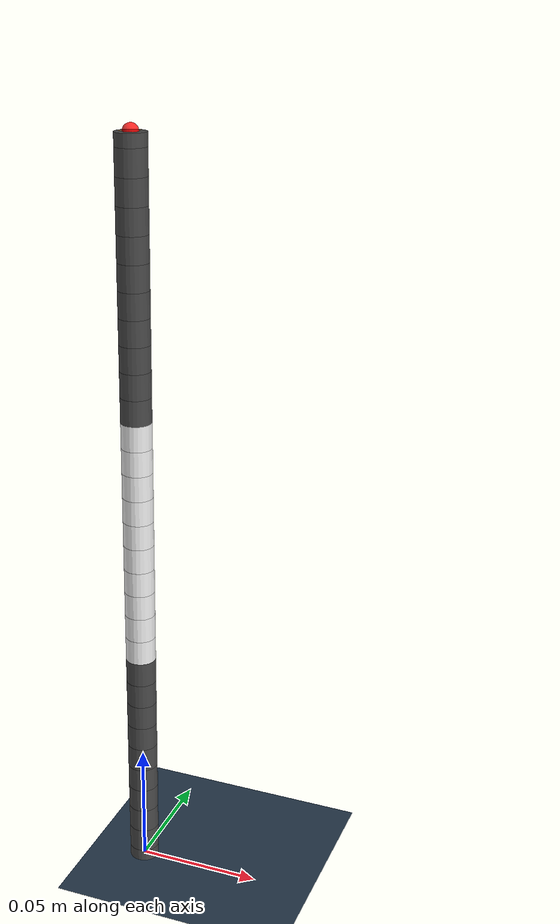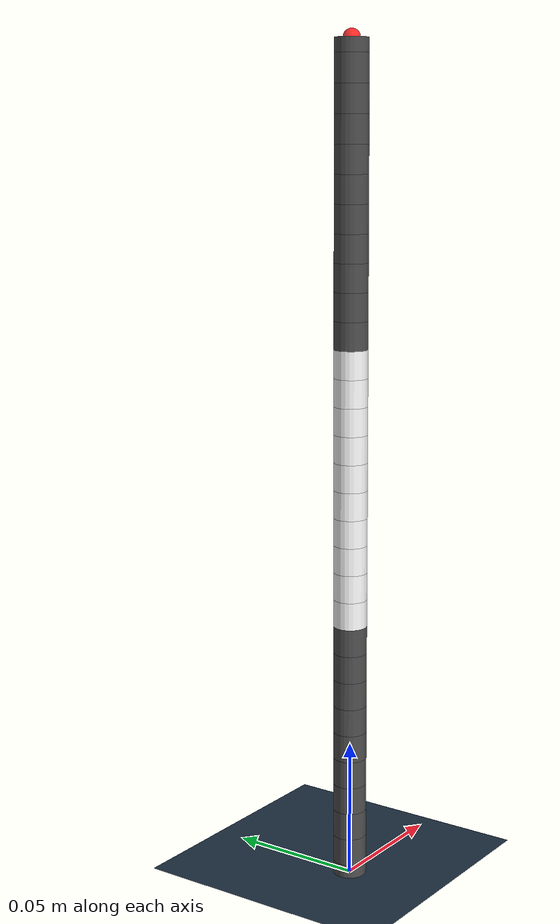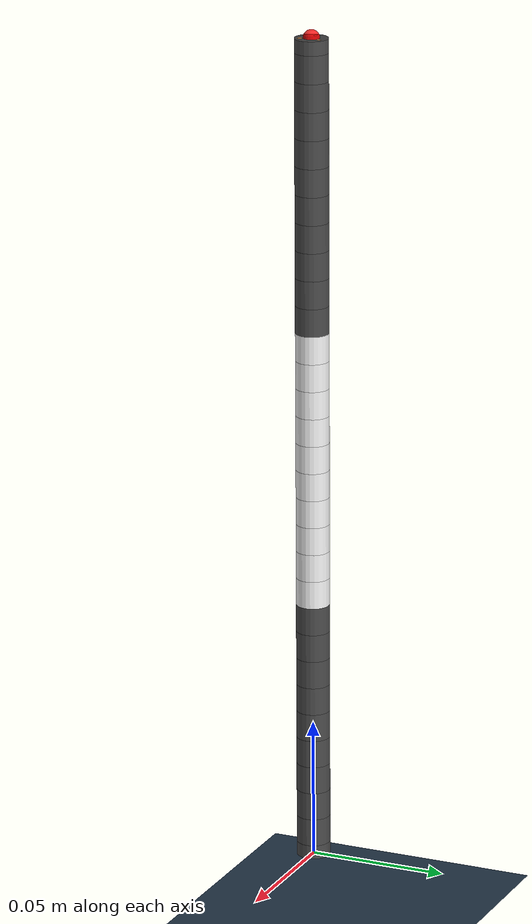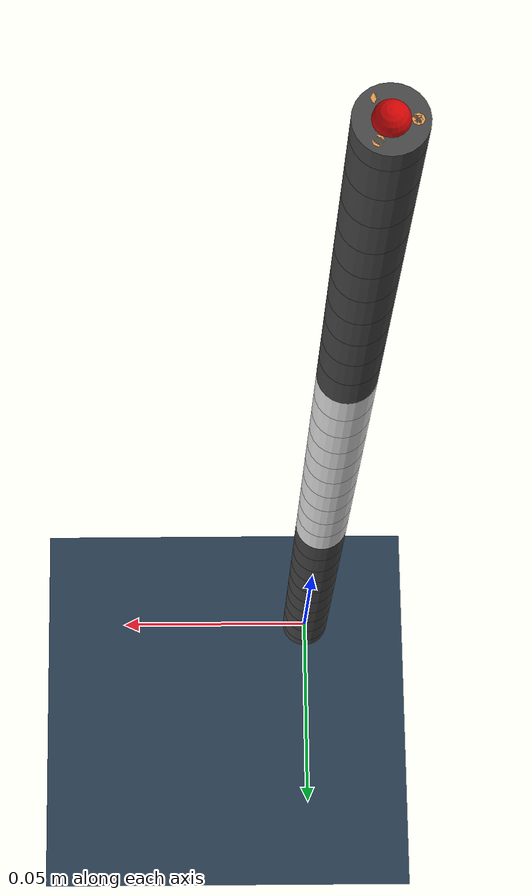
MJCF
<mujoco>
    <compiler angle="radian" autolimits="true" />
    <option gravity="0 0 -9.81" noslip_iterations="1" />
    <asset>
        <texture type="skybox" builtin="gradient" rgb1="1 1 1" rgb2=".6 .8 1" width="256" height="256" />
        <texture name="texplane" type="2d" builtin="checker" rgb1=".2 .3 .4" rgb2=".1 .15 .2" width="512" height="512" />
        <material name="matplane" texture="texplane" texrepeat="5 5" reflectance="0.5" texuniform="true" />
    </asset>
    <default>
        <geom contype="0" conaffinity="0" condim="1" friction="1.0 0.005 0.0001" />
        <default class="tdcr_collision">
            <geom contype="1" conaffinity="1" condim="3" friction="1.0 0.005 0.0001" solimp="0.8 0.95 0.001" />
        </default>
        <default class="planar_link">
            <joint stiffness="0.2454369260617026" damping="0.05" limited="false" axis="1 0 0" pos="0 0 0" type="hinge" />
        </default>
        <default class="vertical_link">
            <joint stiffness="0.2454369260617026" damping="0.05" limited="false" axis="0 -1 0" pos="0 0 0" type="hinge" />
        </default>
    </default>
    <worldbody>
        <light pos="0 0 10" dir="0 0 -1" />
        <geom type="plane" size="100 100 0.1" pos="0 0 -0.0072" material="matplane" />
        <body name="mocap_base" pos="0 0 0" mocap="true" euler="0 0 0">
            <body name="link_0" pos="0 0 0">
                <geom fromto="0 0 0 0 0 0.005000000000000001" size="0.006" type="cylinder" rgba="0.274 0.274 0.274 1.000" mass="0.0001480789697269549" name="geom_0" class="tdcr_collision" />
                <site name="l_0_base_seg_0_tendon_0" pos="0.004 0.0 0" rgba="0 0 0 0" />
                <site name="l_0_base_seg_0_tendon_1" pos="-0.001999999999999999 0.0034641016151377548 0" rgba="0 0 0 0" />
                <site name="l_0_base_seg_0_tendon_2" pos="-0.0020000000000000018 -0.0034641016151377535 0" rgba="0 0 0 0" />
                <site name="l_0_base_seg_1_tendon_0" pos="0.003464099166331756 0.0020000042414504114 0" rgba="0 0 0 0" />
                <site name="l_0_base_seg_1_tendon_1" pos="-0.00346410406393856 0.001999995758546591 0" rgba="0 0 0 0" />
                <site name="l_0_base_seg_1_tendon_2" pos="4.897606802930565e-09 -0.003999999999997002 0" rgba="0 0 0 0" />
                <site name="l_0_base_seg_2_tendon_0" pos="0.0019999915170901827 0.0034641065127341726 0" rgba="0 0 0 0" />
                <site name="l_0_base_seg_2_tendon_1" pos="-0.003999999999988007 -9.795213606833506e-09 0" rgba="0 0 0 0" />
                <site name="l_0_base_seg_2_tendon_2" pos="0.0020000084828978235 -0.0034640967175205645 0" rgba="0 0 0 0" />
                <body name="link_1" pos="0 0 0.005000000000000001">
                    <geom fromto="0 0 0 0 0 0.010000000000000002" size="0.006" type="cylinder" rgba="0.274 0.274 0.274 1.000" mass="0.0002961579394539098" name="geom_1" class="tdcr_collision" />
                    <joint class="planar_link" name="joint_1_x" />
                    <joint class="vertical_link" name="joint_1_z" />
                    <site name="l_1_seg_0_tendon_0" pos="0.004 0.0 0.005000000000000001" rgba="0 0 0 0" />
                    <site name="l_1_seg_0_tendon_1" pos="-0.001999999999999999 0.0034641016151377548 0.005000000000000001" rgba="0 0 0 0" />
                    <site name="l_1_seg_0_tendon_2" pos="-0.0020000000000000018 -0.0034641016151377535 0.005000000000000001" rgba="0 0 0 0" />
                    <site name="l_1_seg_1_tendon_0" pos="0.003464099166331756 0.0020000042414504114 0.005000000000000001" rgba="0 0 0 0" />
                    <site name="l_1_seg_1_tendon_1" pos="-0.00346410406393856 0.001999995758546591 0.005000000000000001" rgba="0 0 0 0" />
                    <site name="l_1_seg_1_tendon_2" pos="4.897606802930565e-09 -0.003999999999997002 0.005000000000000001" rgba="0 0 0 0" />
                    <site name="l_1_seg_2_tendon_0" pos="0.0019999915170901827 0.0034641065127341726 0.005000000000000001" rgba="0 0 0 0" />
                    <site name="l_1_seg_2_tendon_1" pos="-0.003999999999988007 -9.795213606833506e-09 0.005000000000000001" rgba="0 0 0 0" />
                    <site name="l_1_seg_2_tendon_2" pos="0.0020000084828978235 -0.0034640967175205645 0.005000000000000001" rgba="0 0 0 0" />
                    <body name="link_2" pos="0 0 0.010000000000000002">
                        <geom fromto="0 0 0 0 0 0.010000000000000002" size="0.006" type="cylinder" rgba="0.274 0.274 0.274 1.000" mass="0.0002961579394539098" name="geom_2" class="tdcr_collision" />
                        <joint class="planar_link" name="joint_2_x" />
                        <joint class="vertical_link" name="joint_2_z" />
                        <site name="l_2_seg_0_tendon_0" pos="0.004 0.0 0.005000000000000001" rgba="0 0 0 0" />
                        <site name="l_2_seg_0_tendon_1" pos="-0.001999999999999999 0.0034641016151377548 0.005000000000000001" rgba="0 0 0 0" />
                        <site name="l_2_seg_0_tendon_2" pos="-0.0020000000000000018 -0.0034641016151377535 0.005000000000000001" rgba="0 0 0 0" />
                        <site name="l_2_seg_1_tendon_0" pos="0.003464099166331756 0.0020000042414504114 0.005000000000000001" rgba="0 0 0 0" />
                        <site name="l_2_seg_1_tendon_1" pos="-0.00346410406393856 0.001999995758546591 0.005000000000000001" rgba="0 0 0 0" />
                        <site name="l_2_seg_1_tendon_2" pos="4.897606802930565e-09 -0.003999999999997002 0.005000000000000001" rgba="0 0 0 0" />
                        <site name="l_2_seg_2_tendon_0" pos="0.0019999915170901827 0.0034641065127341726 0.005000000000000001" rgba="0 0 0 0" />
                        <site name="l_2_seg_2_tendon_1" pos="-0.003999999999988007 -9.795213606833506e-09 0.005000000000000001" rgba="0 0 0 0" />
                        <site name="l_2_seg_2_tendon_2" pos="0.0020000084828978235 -0.0034640967175205645 0.005000000000000001" rgba="0 0 0 0" />
                        <body name="link_3" pos="0 0 0.010000000000000002">
                            <geom fromto="0 0 0 0 0 0.010000000000000002" size="0.006" type="cylinder" rgba="0.274 0.274 0.274 1.000" mass="0.0002961579394539098" name="geom_3" class="tdcr_collision" />
                            <joint class="planar_link" name="joint_3_x" />
                            <joint class="vertical_link" name="joint_3_z" />
                            <site name="l_3_seg_0_tendon_0" pos="0.004 0.0 0.004999999999999994" rgba="0 0 0 0" />
                            <site name="l_3_seg_0_tendon_1" pos="-0.001999999999999999 0.0034641016151377548 0.004999999999999994" rgba="0 0 0 0" />
                            <site name="l_3_seg_0_tendon_2" pos="-0.0020000000000000018 -0.0034641016151377535 0.004999999999999994" rgba="0 0 0 0" />
                            <site name="l_3_seg_1_tendon_0" pos="0.003464099166331756 0.0020000042414504114 0.004999999999999994" rgba="0 0 0 0" />
                            <site name="l_3_seg_1_tendon_1" pos="-0.00346410406393856 0.001999995758546591 0.004999999999999994" rgba="0 0 0 0" />
                            <site name="l_3_seg_1_tendon_2" pos="4.897606802930565e-09 -0.003999999999997002 0.004999999999999994" rgba="0 0 0 0" />
                            <site name="l_3_seg_2_tendon_0" pos="0.0019999915170901827 0.0034641065127341726 0.004999999999999994" rgba="0 0 0 0" />
                            <site name="l_3_seg_2_tendon_1" pos="-0.003999999999988007 -9.795213606833506e-09 0.004999999999999994" rgba="0 0 0 0" />
                            <site name="l_3_seg_2_tendon_2" pos="0.0020000084828978235 -0.0034640967175205645 0.004999999999999994" rgba="0 0 0 0" />
                            <body name="link_4" pos="0 0 0.010000000000000002">
                                <geom fromto="0 0 0 0 0 0.010000000000000002" size="0.006" type="cylinder" rgba="0.274 0.274 0.274 1.000" mass="0.0002961579394539098" name="geom_4" class="tdcr_collision" />
                                <joint class="planar_link" name="joint_4_x" />
                                <joint class="vertical_link" name="joint_4_z" />
                                <site name="l_4_seg_0_tendon_0" pos="0.004 0.0 0.0050000000000000044" rgba="0 0 0 0" />
                                <site name="l_4_seg_0_tendon_1" pos="-0.001999999999999999 0.0034641016151377548 0.0050000000000000044" rgba="0 0 0 0" />
                                <site name="l_4_seg_0_tendon_2" pos="-0.0020000000000000018 -0.0034641016151377535 0.0050000000000000044" rgba="0 0 0 0" />
                                <site name="l_4_seg_1_tendon_0" pos="0.003464099166331756 0.0020000042414504114 0.0050000000000000044" rgba="0 0 0 0" />
                                <site name="l_4_seg_1_tendon_1" pos="-0.00346410406393856 0.001999995758546591 0.0050000000000000044" rgba="0 0 0 0" />
                                <site name="l_4_seg_1_tendon_2" pos="4.897606802930565e-09 -0.003999999999997002 0.0050000000000000044" rgba="0 0 0 0" />
                                <site name="l_4_seg_2_tendon_0" pos="0.0019999915170901827 0.0034641065127341726 0.0050000000000000044" rgba="0 0 0 0" />
                                <site name="l_4_seg_2_tendon_1" pos="-0.003999999999988007 -9.795213606833506e-09 0.0050000000000000044" rgba="0 0 0 0" />
                                <site name="l_4_seg_2_tendon_2" pos="0.0020000084828978235 -0.0034640967175205645 0.0050000000000000044" rgba="0 0 0 0" />
                                <body name="link_5" pos="0 0 0.010000000000000002">
                                    <geom fromto="0 0 0 0 0 0.010000000000000002" size="0.006" type="cylinder" rgba="0.274 0.274 0.274 1.000" mass="0.0002961579394539098" name="geom_5" class="tdcr_collision" />
                                    <joint class="planar_link" name="joint_5_x" />
                                    <joint class="vertical_link" name="joint_5_z" />
                                    <site name="l_5_seg_0_tendon_0" pos="0.004 0.0 0.0050000000000000044" rgba="0 0 0 0" />
                                    <site name="l_5_seg_0_tendon_1" pos="-0.001999999999999999 0.0034641016151377548 0.0050000000000000044" rgba="0 0 0 0" />
                                    <site name="l_5_seg_0_tendon_2" pos="-0.0020000000000000018 -0.0034641016151377535 0.0050000000000000044" rgba="0 0 0 0" />
                                    <site name="l_5_seg_1_tendon_0" pos="0.003464099166331756 0.0020000042414504114 0.0050000000000000044" rgba="0 0 0 0" />
                                    <site name="l_5_seg_1_tendon_1" pos="-0.00346410406393856 0.001999995758546591 0.0050000000000000044" rgba="0 0 0 0" />
                                    <site name="l_5_seg_1_tendon_2" pos="4.897606802930565e-09 -0.003999999999997002 0.0050000000000000044" rgba="0 0 0 0" />
                                    <site name="l_5_seg_2_tendon_0" pos="0.0019999915170901827 0.0034641065127341726 0.0050000000000000044" rgba="0 0 0 0" />
                                    <site name="l_5_seg_2_tendon_1" pos="-0.003999999999988007 -9.795213606833506e-09 0.0050000000000000044" rgba="0 0 0 0" />
                                    <site name="l_5_seg_2_tendon_2" pos="0.0020000084828978235 -0.0034640967175205645 0.0050000000000000044" rgba="0 0 0 0" />
                                    <body name="link_6" pos="0 0 0.010000000000000002">
                                        <geom fromto="0 0 0 0 0 0.010000000000000002" size="0.006" type="cylinder" rgba="0.274 0.274 0.274 1.000" mass="0.0002961579394539098" name="geom_6" class="tdcr_collision" />
                                        <joint class="planar_link" name="joint_6_x" />
                                        <joint class="vertical_link" name="joint_6_z" />
                                        <site name="l_6_seg_0_tendon_0" pos="0.004 0.0 0.0049999999999999906" rgba="0 0 0 0" />
                                        <site name="l_6_seg_0_tendon_1" pos="-0.001999999999999999 0.0034641016151377548 0.0049999999999999906" rgba="0 0 0 0" />
                                        <site name="l_6_seg_0_tendon_2" pos="-0.0020000000000000018 -0.0034641016151377535 0.0049999999999999906" rgba="0 0 0 0" />
                                        <site name="l_6_seg_1_tendon_0" pos="0.003464099166331756 0.0020000042414504114 0.0049999999999999906" rgba="0 0 0 0" />
                                        <site name="l_6_seg_1_tendon_1" pos="-0.00346410406393856 0.001999995758546591 0.0049999999999999906" rgba="0 0 0 0" />
                                        <site name="l_6_seg_1_tendon_2" pos="4.897606802930565e-09 -0.003999999999997002 0.0049999999999999906" rgba="0 0 0 0" />
                                        <site name="l_6_seg_2_tendon_0" pos="0.0019999915170901827 0.0034641065127341726 0.0049999999999999906" rgba="0 0 0 0" />
                                        <site name="l_6_seg_2_tendon_1" pos="-0.003999999999988007 -9.795213606833506e-09 0.0049999999999999906" rgba="0 0 0 0" />
                                        <site name="l_6_seg_2_tendon_2" pos="0.0020000084828978235 -0.0034640967175205645 0.0049999999999999906" rgba="0 0 0 0" />
                                        <body name="link_7" pos="0 0 0.010000000000000002">
                                            <geom fromto="0 0 0 0 0 0.010000000000000002" size="0.006" type="cylinder" rgba="0.274 0.274 0.274 1.000" mass="0.0002961579394539098" name="geom_7" class="tdcr_collision" />
                                            <joint class="planar_link" name="joint_7_x" />
                                            <joint class="vertical_link" name="joint_7_z" />
                                            <site name="l_7_seg_0_tendon_0" pos="0.004 0.0 0.0049999999999999906" rgba="0 0 0 0" />
                                            <site name="l_7_seg_0_tendon_1" pos="-0.001999999999999999 0.0034641016151377548 0.0049999999999999906" rgba="0 0 0 0" />
                                            <site name="l_7_seg_0_tendon_2" pos="-0.0020000000000000018 -0.0034641016151377535 0.0049999999999999906" rgba="0 0 0 0" />
                                            <site name="l_7_seg_1_tendon_0" pos="0.003464099166331756 0.0020000042414504114 0.0049999999999999906" rgba="0 0 0 0" />
                                            <site name="l_7_seg_1_tendon_1" pos="-0.00346410406393856 0.001999995758546591 0.0049999999999999906" rgba="0 0 0 0" />
                                            <site name="l_7_seg_1_tendon_2" pos="4.897606802930565e-09 -0.003999999999997002 0.0049999999999999906" rgba="0 0 0 0" />
                                            <site name="l_7_seg_2_tendon_0" pos="0.0019999915170901827 0.0034641065127341726 0.0049999999999999906" rgba="0 0 0 0" />
                                            <site name="l_7_seg_2_tendon_1" pos="-0.003999999999988007 -9.795213606833506e-09 0.0049999999999999906" rgba="0 0 0 0" />
                                            <site name="l_7_seg_2_tendon_2" pos="0.0020000084828978235 -0.0034640967175205645 0.0049999999999999906" rgba="0 0 0 0" />
                                            <body name="link_8" pos="0 0 0.010000000000000002">
                                                <geom fromto="0 0 0 0 0 0.010000000000000002" size="0.006" type="cylinder" rgba="0.274 0.274 0.274 1.000" mass="0.0002961579394539098" name="geom_8" class="tdcr_collision" />
                                                <joint class="planar_link" name="joint_8_x" />
                                                <joint class="vertical_link" name="joint_8_z" />
                                                <site name="l_8_seg_0_tendon_0" pos="0.004 0.0 0.0050000000000000044" rgba="0 0 0 0" />
                                                <site name="l_8_seg_0_tendon_1" pos="-0.001999999999999999 0.0034641016151377548 0.0050000000000000044" rgba="0 0 0 0" />
                                                <site name="l_8_seg_0_tendon_2" pos="-0.0020000000000000018 -0.0034641016151377535 0.0050000000000000044" rgba="0 0 0 0" />
                                                <site name="l_8_seg_1_tendon_0" pos="0.003464099166331756 0.0020000042414504114 0.0050000000000000044" rgba="0 0 0 0" />
                                                <site name="l_8_seg_1_tendon_1" pos="-0.00346410406393856 0.001999995758546591 0.0050000000000000044" rgba="0 0 0 0" />
                                                <site name="l_8_seg_1_tendon_2" pos="4.897606802930565e-09 -0.003999999999997002 0.0050000000000000044" rgba="0 0 0 0" />
                                                <site name="l_8_seg_2_tendon_0" pos="0.0019999915170901827 0.0034641065127341726 0.0050000000000000044" rgba="0 0 0 0" />
                                                <site name="l_8_seg_2_tendon_1" pos="-0.003999999999988007 -9.795213606833506e-09 0.0050000000000000044" rgba="0 0 0 0" />
                                                <site name="l_8_seg_2_tendon_2" pos="0.0020000084828978235 -0.0034640967175205645 0.0050000000000000044" rgba="0 0 0 0" />
                                                <body name="link_9" pos="0 0 0.010000000000000002">
                                                    <geom fromto="0 0 0 0 0 0.010000000000000002" size="0.006" type="cylinder" rgba="0.274 0.274 0.274 1.000" mass="0.0002961579394539098" name="geom_9" class="tdcr_collision" />
                                                    <joint class="planar_link" name="joint_9_x" />
                                                    <joint class="vertical_link" name="joint_9_z" />
                                                    <site name="l_9_seg_0_tendon_0" pos="0.004 0.0 0.0049999999999999906" rgba="0 0 0 0" />
                                                    <site name="l_9_seg_0_tendon_1" pos="-0.001999999999999999 0.0034641016151377548 0.0049999999999999906" rgba="0 0 0 0" />
                                                    <site name="l_9_seg_0_tendon_2" pos="-0.0020000000000000018 -0.0034641016151377535 0.0049999999999999906" rgba="0 0 0 0" />
                                                    <site name="l_9_seg_1_tendon_0" pos="0.003464099166331756 0.0020000042414504114 0.0049999999999999906" rgba="0 0 0 0" />
                                                    <site name="l_9_seg_1_tendon_1" pos="-0.00346410406393856 0.001999995758546591 0.0049999999999999906" rgba="0 0 0 0" />
                                                    <site name="l_9_seg_1_tendon_2" pos="4.897606802930565e-09 -0.003999999999997002 0.0049999999999999906" rgba="0 0 0 0" />
                                                    <site name="l_9_seg_2_tendon_0" pos="0.0019999915170901827 0.0034641065127341726 0.0049999999999999906" rgba="0 0 0 0" />
                                                    <site name="l_9_seg_2_tendon_1" pos="-0.003999999999988007 -9.795213606833506e-09 0.0049999999999999906" rgba="0 0 0 0" />
                                                    <site name="l_9_seg_2_tendon_2" pos="0.0020000084828978235 -0.0034640967175205645 0.0049999999999999906" rgba="0 0 0 0" />
                                                    <body name="link_10" pos="0 0 0.010000000000000002">
                                                        <geom fromto="0 0 0 0 0 0.010000000000000002" size="0.006" type="cylinder" rgba="0.910 0.910 0.910 1.000" mass="0.0002961579394539098" name="geom_10" class="tdcr_collision" />
                                                        <joint class="planar_link" name="joint_10_x" />
                                                        <joint class="vertical_link" name="joint_10_z" />
                                                        <site name="l_10_seg_0_tendon_0" pos="0.004 0.0 0.0049999999999999906" rgba="0 0 0 0" />
                                                        <site name="l_10_seg_0_tendon_1" pos="-0.001999999999999999 0.0034641016151377548 0.0049999999999999906" rgba="0 0 0 0" />
                                                        <site name="l_10_seg_0_tendon_2" pos="-0.0020000000000000018 -0.0034641016151377535 0.0049999999999999906" rgba="0 0 0 0" />
                                                        <site name="l_10_seg_1_tendon_0" pos="0.003464099166331756 0.0020000042414504114 0.0049999999999999906" rgba="0 0 0 0" />
                                                        <site name="l_10_seg_1_tendon_1" pos="-0.00346410406393856 0.001999995758546591 0.0049999999999999906" rgba="0 0 0 0" />
                                                        <site name="l_10_seg_1_tendon_2" pos="4.897606802930565e-09 -0.003999999999997002 0.0049999999999999906" rgba="0 0 0 0" />
                                                        <site name="l_10_seg_2_tendon_0" pos="0.0019999915170901827 0.0034641065127341726 0.0049999999999999906" rgba="0 0 0 0" />
                                                        <site name="l_10_seg_2_tendon_1" pos="-0.003999999999988007 -9.795213606833506e-09 0.0049999999999999906" rgba="0 0 0 0" />
                                                        <site name="l_10_seg_2_tendon_2" pos="0.0020000084828978235 -0.0034640967175205645 0.0049999999999999906" rgba="0 0 0 0" />
                                                        <body name="link_11" pos="0 0 0.010000000000000002">
                                                            <geom fromto="0 0 0 0 0 0.010000000000000002" size="0.006" type="cylinder" rgba="0.910 0.910 0.910 1.000" mass="0.0002961579394539098" name="geom_11" class="tdcr_collision" />
                                                            <joint class="planar_link" name="joint_11_x" />
                                                            <joint class="vertical_link" name="joint_11_z" />
                                                            <site name="l_11_seg_1_tendon_0" pos="0.003464099166331756 0.0020000042414504114 0.0049999999999999906" rgba="0 0 0 0" />
                                                            <site name="l_11_seg_1_tendon_1" pos="-0.00346410406393856 0.001999995758546591 0.0049999999999999906" rgba="0 0 0 0" />
                                                            <site name="l_11_seg_1_tendon_2" pos="4.897606802930565e-09 -0.003999999999997002 0.0049999999999999906" rgba="0 0 0 0" />
                                                            <site name="l_11_seg_2_tendon_0" pos="0.0019999915170901827 0.0034641065127341726 0.0049999999999999906" rgba="0 0 0 0" />
                                                            <site name="l_11_seg_2_tendon_1" pos="-0.003999999999988007 -9.795213606833506e-09 0.0049999999999999906" rgba="0 0 0 0" />
                                                            <site name="l_11_seg_2_tendon_2" pos="0.0020000084828978235 -0.0034640967175205645 0.0049999999999999906" rgba="0 0 0 0" />
                                                            <body name="link_12" pos="0 0 0.010000000000000002">
                                                                <geom fromto="0 0 0 0 0 0.010000000000000002" size="0.006" type="cylinder" rgba="0.910 0.910 0.910 1.000" mass="0.0002961579394539098" name="geom_12" class="tdcr_collision" />
                                                                <joint class="planar_link" name="joint_12_x" />
                                                                <joint class="vertical_link" name="joint_12_z" />
                                                                <site name="l_12_seg_1_tendon_0" pos="0.003464099166331756 0.0020000042414504114 0.0049999999999999906" rgba="0 0 0 0" />
                                                                <site name="l_12_seg_1_tendon_1" pos="-0.00346410406393856 0.001999995758546591 0.0049999999999999906" rgba="0 0 0 0" />
                                                                <site name="l_12_seg_1_tendon_2" pos="4.897606802930565e-09 -0.003999999999997002 0.0049999999999999906" rgba="0 0 0 0" />
                                                                <site name="l_12_seg_2_tendon_0" pos="0.0019999915170901827 0.0034641065127341726 0.0049999999999999906" rgba="0 0 0 0" />
                                                                <site name="l_12_seg_2_tendon_1" pos="-0.003999999999988007 -9.795213606833506e-09 0.0049999999999999906" rgba="0 0 0 0" />
                                                                <site name="l_12_seg_2_tendon_2" pos="0.0020000084828978235 -0.0034640967175205645 0.0049999999999999906" rgba="0 0 0 0" />
                                                                <body name="link_13" pos="0 0 0.010000000000000002">
                                                                    <geom fromto="0 0 0 0 0 0.010000000000000002" size="0.006" type="cylinder" rgba="0.910 0.910 0.910 1.000" mass="0.0002961579394539098" name="geom_13" class="tdcr_collision" />
                                                                    <joint class="planar_link" name="joint_13_x" />
                                                                    <joint class="vertical_link" name="joint_13_z" />
                                                                    <site name="l_13_seg_1_tendon_0" pos="0.003464099166331756 0.0020000042414504114 0.004999999999999977" rgba="0 0 0 0" />
                                                                    <site name="l_13_seg_1_tendon_1" pos="-0.00346410406393856 0.001999995758546591 0.004999999999999977" rgba="0 0 0 0" />
                                                                    <site name="l_13_seg_1_tendon_2" pos="4.897606802930565e-09 -0.003999999999997002 0.004999999999999977" rgba="0 0 0 0" />
                                                                    <site name="l_13_seg_2_tendon_0" pos="0.0019999915170901827 0.0034641065127341726 0.004999999999999977" rgba="0 0 0 0" />
                                                                    <site name="l_13_seg_2_tendon_1" pos="-0.003999999999988007 -9.795213606833506e-09 0.004999999999999977" rgba="0 0 0 0" />
                                                                    <site name="l_13_seg_2_tendon_2" pos="0.0020000084828978235 -0.0034640967175205645 0.004999999999999977" rgba="0 0 0 0" />
                                                                    <body name="link_14" pos="0 0 0.010000000000000002">
                                                                        <geom fromto="0 0 0 0 0 0.010000000000000002" size="0.006" type="cylinder" rgba="0.910 0.910 0.910 1.000" mass="0.0002961579394539098" name="geom_14" class="tdcr_collision" />
                                                                        <joint class="planar_link" name="joint_14_x" />
                                                                        <joint class="vertical_link" name="joint_14_z" />
                                                                        <site name="force_site_mid" pos="0 0 0.009999999999999953" size="0.003" rgba="0 1 0 0.8" type="sphere" />
                                                                        <site name="l_14_seg_1_tendon_0" pos="0.003464099166331756 0.0020000042414504114 0.004999999999999977" rgba="0 0 0 0" />
                                                                        <site name="l_14_seg_1_tendon_1" pos="-0.00346410406393856 0.001999995758546591 0.004999999999999977" rgba="0 0 0 0" />
                                                                        <site name="l_14_seg_1_tendon_2" pos="4.897606802930565e-09 -0.003999999999997002 0.004999999999999977" rgba="0 0 0 0" />
                                                                        <site name="l_14_seg_2_tendon_0" pos="0.0019999915170901827 0.0034641065127341726 0.004999999999999977" rgba="0 0 0 0" />
                                                                        <site name="l_14_seg_2_tendon_1" pos="-0.003999999999988007 -9.795213606833506e-09 0.004999999999999977" rgba="0 0 0 0" />
                                                                        <site name="l_14_seg_2_tendon_2" pos="0.0020000084828978235 -0.0034640967175205645 0.004999999999999977" rgba="0 0 0 0" />
                                                                        <body name="link_15" pos="0 0 0.010000000000000002">
                                                                            <geom fromto="0 0 0 0 0 0.010000000000000002" size="0.006" type="cylinder" rgba="0.910 0.910 0.910 1.000" mass="0.0002961579394539098" name="geom_15" class="tdcr_collision" />
                                                                            <joint class="planar_link" name="joint_15_x" />
                                                                            <joint class="vertical_link" name="joint_15_z" />
                                                                            <site name="l_15_seg_1_tendon_0" pos="0.003464099166331756 0.0020000042414504114 0.004999999999999977" rgba="0 0 0 0" />
                                                                            <site name="l_15_seg_1_tendon_1" pos="-0.00346410406393856 0.001999995758546591 0.004999999999999977" rgba="0 0 0 0" />
                                                                            <site name="l_15_seg_1_tendon_2" pos="4.897606802930565e-09 -0.003999999999997002 0.004999999999999977" rgba="0 0 0 0" />
                                                                            <site name="l_15_seg_2_tendon_0" pos="0.0019999915170901827 0.0034641065127341726 0.004999999999999977" rgba="0 0 0 0" />
                                                                            <site name="l_15_seg_2_tendon_1" pos="-0.003999999999988007 -9.795213606833506e-09 0.004999999999999977" rgba="0 0 0 0" />
                                                                            <site name="l_15_seg_2_tendon_2" pos="0.0020000084828978235 -0.0034640967175205645 0.004999999999999977" rgba="0 0 0 0" />
                                                                            <body name="link_16" pos="0 0 0.010000000000000002">
                                                                                <geom fromto="0 0 0 0 0 0.010000000000000002" size="0.006" type="cylinder" rgba="0.910 0.910 0.910 1.000" mass="0.0002961579394539098" name="geom_16" class="tdcr_collision" />
                                                                                <joint class="planar_link" name="joint_16_x" />
                                                                                <joint class="vertical_link" name="joint_16_z" />
                                                                                <site name="l_16_seg_1_tendon_0" pos="0.003464099166331756 0.0020000042414504114 0.004999999999999977" rgba="0 0 0 0" />
                                                                                <site name="l_16_seg_1_tendon_1" pos="-0.00346410406393856 0.001999995758546591 0.004999999999999977" rgba="0 0 0 0" />
                                                                                <site name="l_16_seg_1_tendon_2" pos="4.897606802930565e-09 -0.003999999999997002 0.004999999999999977" rgba="0 0 0 0" />
                                                                                <site name="l_16_seg_2_tendon_0" pos="0.0019999915170901827 0.0034641065127341726 0.004999999999999977" rgba="0 0 0 0" />
                                                                                <site name="l_16_seg_2_tendon_1" pos="-0.003999999999988007 -9.795213606833506e-09 0.004999999999999977" rgba="0 0 0 0" />
                                                                                <site name="l_16_seg_2_tendon_2" pos="0.0020000084828978235 -0.0034640967175205645 0.004999999999999977" rgba="0 0 0 0" />
                                                                                <body name="link_17" pos="0 0 0.010000000000000002">
                                                                                    <geom fromto="0 0 0 0 0 0.010000000000000002" size="0.006" type="cylinder" rgba="0.910 0.910 0.910 1.000" mass="0.0002961579394539098" name="geom_17" class="tdcr_collision" />
                                                                                    <joint class="planar_link" name="joint_17_x" />
                                                                                    <joint class="vertical_link" name="joint_17_z" />
                                                                                    <site name="l_17_seg_1_tendon_0" pos="0.003464099166331756 0.0020000042414504114 0.004999999999999977" rgba="0 0 0 0" />
                                                                                    <site name="l_17_seg_1_tendon_1" pos="-0.00346410406393856 0.001999995758546591 0.004999999999999977" rgba="0 0 0 0" />
                                                                                    <site name="l_17_seg_1_tendon_2" pos="4.897606802930565e-09 -0.003999999999997002 0.004999999999999977" rgba="0 0 0 0" />
                                                                                    <site name="l_17_seg_2_tendon_0" pos="0.0019999915170901827 0.0034641065127341726 0.004999999999999977" rgba="0 0 0 0" />
                                                                                    <site name="l_17_seg_2_tendon_1" pos="-0.003999999999988007 -9.795213606833506e-09 0.004999999999999977" rgba="0 0 0 0" />
                                                                                    <site name="l_17_seg_2_tendon_2" pos="0.0020000084828978235 -0.0034640967175205645 0.004999999999999977" rgba="0 0 0 0" />
                                                                                    <body name="link_18" pos="0 0 0.010000000000000002">
                                                                                        <geom fromto="0 0 0 0 0 0.010000000000000002" size="0.006" type="cylinder" rgba="0.910 0.910 0.910 1.000" mass="0.0002961579394539098" name="geom_18" class="tdcr_collision" />
                                                                                        <joint class="planar_link" name="joint_18_x" />
                                                                                        <joint class="vertical_link" name="joint_18_z" />
                                                                                        <site name="l_18_seg_1_tendon_0" pos="0.003464099166331756 0.0020000042414504114 0.004999999999999977" rgba="0 0 0 0" />
                                                                                        <site name="l_18_seg_1_tendon_1" pos="-0.00346410406393856 0.001999995758546591 0.004999999999999977" rgba="0 0 0 0" />
                                                                                        <site name="l_18_seg_1_tendon_2" pos="4.897606802930565e-09 -0.003999999999997002 0.004999999999999977" rgba="0 0 0 0" />
                                                                                        <site name="l_18_seg_2_tendon_0" pos="0.0019999915170901827 0.0034641065127341726 0.004999999999999977" rgba="0 0 0 0" />
                                                                                        <site name="l_18_seg_2_tendon_1" pos="-0.003999999999988007 -9.795213606833506e-09 0.004999999999999977" rgba="0 0 0 0" />
                                                                                        <site name="l_18_seg_2_tendon_2" pos="0.0020000084828978235 -0.0034640967175205645 0.004999999999999977" rgba="0 0 0 0" />
                                                                                        <body name="link_19" pos="0 0 0.010000000000000002">
                                                                                            <geom fromto="0 0 0 0 0 0.010000000000000002" size="0.006" type="cylinder" rgba="0.910 0.910 0.910 1.000" mass="0.0002961579394539098" name="geom_19" class="tdcr_collision" />
                                                                                            <joint class="planar_link" name="joint_19_x" />
                                                                                            <joint class="vertical_link" name="joint_19_z" />
                                                                                            <site name="l_19_seg_1_tendon_0" pos="0.003464099166331756 0.0020000042414504114 0.004999999999999977" rgba="0 0 0 0" />
                                                                                            <site name="l_19_seg_1_tendon_1" pos="-0.00346410406393856 0.001999995758546591 0.004999999999999977" rgba="0 0 0 0" />
                                                                                            <site name="l_19_seg_1_tendon_2" pos="4.897606802930565e-09 -0.003999999999997002 0.004999999999999977" rgba="0 0 0 0" />
                                                                                            <site name="l_19_seg_2_tendon_0" pos="0.0019999915170901827 0.0034641065127341726 0.004999999999999977" rgba="0 0 0 0" />
                                                                                            <site name="l_19_seg_2_tendon_1" pos="-0.003999999999988007 -9.795213606833506e-09 0.004999999999999977" rgba="0 0 0 0" />
                                                                                            <site name="l_19_seg_2_tendon_2" pos="0.0020000084828978235 -0.0034640967175205645 0.004999999999999977" rgba="0 0 0 0" />
                                                                                            <body name="link_20" pos="0 0 0.010000000000000002">
                                                                                                <geom fromto="0 0 0 0 0 0.010000000000000002" size="0.006" type="cylinder" rgba="0.274 0.274 0.274 1.000" mass="0.0002961579394539098" name="geom_20" class="tdcr_collision" />
                                                                                                <joint class="planar_link" name="joint_20_x" />
                                                                                                <joint class="vertical_link" name="joint_20_z" />
                                                                                                <site name="l_20_seg_1_tendon_0" pos="0.003464099166331756 0.0020000042414504114 0.004999999999999977" rgba="0 0 0 0" />
                                                                                                <site name="l_20_seg_1_tendon_1" pos="-0.00346410406393856 0.001999995758546591 0.004999999999999977" rgba="0 0 0 0" />
                                                                                                <site name="l_20_seg_1_tendon_2" pos="4.897606802930565e-09 -0.003999999999997002 0.004999999999999977" rgba="0 0 0 0" />
                                                                                                <site name="l_20_seg_2_tendon_0" pos="0.0019999915170901827 0.0034641065127341726 0.004999999999999977" rgba="0 0 0 0" />
                                                                                                <site name="l_20_seg_2_tendon_1" pos="-0.003999999999988007 -9.795213606833506e-09 0.004999999999999977" rgba="0 0 0 0" />
                                                                                                <site name="l_20_seg_2_tendon_2" pos="0.0020000084828978235 -0.0034640967175205645 0.004999999999999977" rgba="0 0 0 0" />
                                                                                                <body name="link_21" pos="0 0 0.010000000000000002">
                                                                                                    <geom fromto="0 0 0 0 0 0.010000000000000002" size="0.006" type="cylinder" rgba="0.274 0.274 0.274 1.000" mass="0.0002961579394539098" name="geom_21" class="tdcr_collision" />
                                                                                                    <joint class="planar_link" name="joint_21_x" />
                                                                                                    <joint class="vertical_link" name="joint_21_z" />
                                                                                                    <site name="l_21_seg_2_tendon_0" pos="0.0019999915170901827 0.0034641065127341726 0.004999999999999977" rgba="0 0 0 0" />
                                                                                                    <site name="l_21_seg_2_tendon_1" pos="-0.003999999999988007 -9.795213606833506e-09 0.004999999999999977" rgba="0 0 0 0" />
                                                                                                    <site name="l_21_seg_2_tendon_2" pos="0.0020000084828978235 -0.0034640967175205645 0.004999999999999977" rgba="0 0 0 0" />
                                                                                                    <body name="link_22" pos="0 0 0.010000000000000002">
                                                                                                        <geom fromto="0 0 0 0 0 0.010000000000000002" size="0.006" type="cylinder" rgba="0.274 0.274 0.274 1.000" mass="0.0002961579394539098" name="geom_22" class="tdcr_collision" />
                                                                                                        <joint class="planar_link" name="joint_22_x" />
                                                                                                        <joint class="vertical_link" name="joint_22_z" />
                                                                                                        <site name="l_22_seg_2_tendon_0" pos="0.0019999915170901827 0.0034641065127341726 0.004999999999999977" rgba="0 0 0 0" />
                                                                                                        <site name="l_22_seg_2_tendon_1" pos="-0.003999999999988007 -9.795213606833506e-09 0.004999999999999977" rgba="0 0 0 0" />
                                                                                                        <site name="l_22_seg_2_tendon_2" pos="0.0020000084828978235 -0.0034640967175205645 0.004999999999999977" rgba="0 0 0 0" />
                                                                                                        <body name="link_23" pos="0 0 0.010000000000000002">
                                                                                                            <geom fromto="0 0 0 0 0 0.010000000000000002" size="0.006" type="cylinder" rgba="0.274 0.274 0.274 1.000" mass="0.0002961579394539098" name="geom_23" class="tdcr_collision" />
                                                                                                            <joint class="planar_link" name="joint_23_x" />
                                                                                                            <joint class="vertical_link" name="joint_23_z" />
                                                                                                            <site name="l_23_seg_2_tendon_0" pos="0.0019999915170901827 0.0034641065127341726 0.004999999999999977" rgba="0 0 0 0" />
                                                                                                            <site name="l_23_seg_2_tendon_1" pos="-0.003999999999988007 -9.795213606833506e-09 0.004999999999999977" rgba="0 0 0 0" />
                                                                                                            <site name="l_23_seg_2_tendon_2" pos="0.0020000084828978235 -0.0034640967175205645 0.004999999999999977" rgba="0 0 0 0" />
                                                                                                            <body name="link_24" pos="0 0 0.010000000000000002">
                                                                                                                <geom fromto="0 0 0 0 0 0.010000000000000002" size="0.006" type="cylinder" rgba="0.274 0.274 0.274 1.000" mass="0.0002961579394539098" name="geom_24" class="tdcr_collision" />
                                                                                                                <joint class="planar_link" name="joint_24_x" />
                                                                                                                <joint class="vertical_link" name="joint_24_z" />
                                                                                                                <site name="l_24_seg_2_tendon_0" pos="0.0019999915170901827 0.0034641065127341726 0.0050000000000000044" rgba="0 0 0 0" />
                                                                                                                <site name="l_24_seg_2_tendon_1" pos="-0.003999999999988007 -9.795213606833506e-09 0.0050000000000000044" rgba="0 0 0 0" />
                                                                                                                <site name="l_24_seg_2_tendon_2" pos="0.0020000084828978235 -0.0034640967175205645 0.0050000000000000044" rgba="0 0 0 0" />
                                                                                                                <body name="link_25" pos="0 0 0.010000000000000002">
                                                                                                                    <geom fromto="0 0 0 0 0 0.010000000000000002" size="0.006" type="cylinder" rgba="0.274 0.274 0.274 1.000" mass="0.0002961579394539098" name="geom_25" class="tdcr_collision" />
                                                                                                                    <joint class="planar_link" name="joint_25_x" />
                                                                                                                    <joint class="vertical_link" name="joint_25_z" />
                                                                                                                    <site name="l_25_seg_2_tendon_0" pos="0.0019999915170901827 0.0034641065127341726 0.0050000000000000044" rgba="0 0 0 0" />
                                                                                                                    <site name="l_25_seg_2_tendon_1" pos="-0.003999999999988007 -9.795213606833506e-09 0.0050000000000000044" rgba="0 0 0 0" />
                                                                                                                    <site name="l_25_seg_2_tendon_2" pos="0.0020000084828978235 -0.0034640967175205645 0.0050000000000000044" rgba="0 0 0 0" />
                                                                                                                    <body name="link_26" pos="0 0 0.010000000000000002">
                                                                                                                        <geom fromto="0 0 0 0 0 0.010000000000000002" size="0.006" type="cylinder" rgba="0.274 0.274 0.274 1.000" mass="0.0002961579394539098" name="geom_26" class="tdcr_collision" />
                                                                                                                        <joint class="planar_link" name="joint_26_x" />
                                                                                                                        <joint class="vertical_link" name="joint_26_z" />
                                                                                                                        <site name="l_26_seg_2_tendon_0" pos="0.0019999915170901827 0.0034641065127341726 0.0050000000000000044" rgba="0 0 0 0" />
                                                                                                                        <site name="l_26_seg_2_tendon_1" pos="-0.003999999999988007 -9.795213606833506e-09 0.0050000000000000044" rgba="0 0 0 0" />
                                                                                                                        <site name="l_26_seg_2_tendon_2" pos="0.0020000084828978235 -0.0034640967175205645 0.0050000000000000044" rgba="0 0 0 0" />
                                                                                                                        <body name="link_27" pos="0 0 0.010000000000000002">
                                                                                                                            <geom fromto="0 0 0 0 0 0.010000000000000002" size="0.006" type="cylinder" rgba="0.274 0.274 0.274 1.000" mass="0.0002961579394539098" name="geom_27" class="tdcr_collision" />
                                                                                                                            <joint class="planar_link" name="joint_27_x" />
                                                                                                                            <joint class="vertical_link" name="joint_27_z" />
                                                                                                                            <site name="l_27_seg_2_tendon_0" pos="0.0019999915170901827 0.0034641065127341726 0.0050000000000000044" rgba="0 0 0 0" />
                                                                                                                            <site name="l_27_seg_2_tendon_1" pos="-0.003999999999988007 -9.795213606833506e-09 0.0050000000000000044" rgba="0 0 0 0" />
                                                                                                                            <site name="l_27_seg_2_tendon_2" pos="0.0020000084828978235 -0.0034640967175205645 0.0050000000000000044" rgba="0 0 0 0" />
                                                                                                                            <body name="link_28" pos="0 0 0.010000000000000002">
                                                                                                                                <geom fromto="0 0 0 0 0 0.010000000000000002" size="0.006" type="cylinder" rgba="0.274 0.274 0.274 1.000" mass="0.0002961579394539098" name="geom_28" class="tdcr_collision" />
                                                                                                                                <joint class="planar_link" name="joint_28_x" />
                                                                                                                                <joint class="vertical_link" name="joint_28_z" />
                                                                                                                                <site name="l_28_seg_2_tendon_0" pos="0.0019999915170901827 0.0034641065127341726 0.0050000000000000044" rgba="0 0 0 0" />
                                                                                                                                <site name="l_28_seg_2_tendon_1" pos="-0.003999999999988007 -9.795213606833506e-09 0.0050000000000000044" rgba="0 0 0 0" />
                                                                                                                                <site name="l_28_seg_2_tendon_2" pos="0.0020000084828978235 -0.0034640967175205645 0.0050000000000000044" rgba="0 0 0 0" />
                                                                                                                                <body name="link_29" pos="0 0 0.010000000000000002">
                                                                                                                                    <geom fromto="0 0 0 0 0 0.010000000000000002" size="0.006" type="cylinder" rgba="0.274 0.274 0.274 1.000" mass="0.0002961579394539098" name="geom_29" class="tdcr_collision" />
                                                                                                                                    <joint class="planar_link" name="joint_29_x" />
                                                                                                                                    <joint class="vertical_link" name="joint_29_z" />
                                                                                                                                    <site name="l_29_seg_2_tendon_0" pos="0.0019999915170901827 0.0034641065127341726 0.0050000000000000044" rgba="0 0 0 0" />
                                                                                                                                    <site name="l_29_seg_2_tendon_1" pos="-0.003999999999988007 -9.795213606833506e-09 0.0050000000000000044" rgba="0 0 0 0" />
                                                                                                                                    <site name="l_29_seg_2_tendon_2" pos="0.0020000084828978235 -0.0034640967175205645 0.0050000000000000044" rgba="0 0 0 0" />
                                                                                                                                    <body name="link_30" pos="0 0 0.010000000000000002">
                                                                                                                                        <geom fromto="0 0 0 0 0 0.005000000000000001" size="0.006" type="cylinder" rgba="0.274 0.274 0.274 1.000" mass="0.0001480789697269549" name="geom_30" class="tdcr_collision" />
                                                                                                                                        <joint class="planar_link" name="joint_30_x" />
                                                                                                                                        <joint class="vertical_link" name="joint_30_z" />
                                                                                                                                        <site name="l_30_seg_2_tendon_0" pos="0.0019999915170901827 0.0034641065127341726 0.0050000000000000044" rgba="0 0 0 0" />
                                                                                                                                        <site name="l_30_seg_2_tendon_1" pos="-0.003999999999988007 -9.795213606833506e-09 0.0050000000000000044" rgba="0 0 0 0" />
                                                                                                                                        <site name="l_30_seg_2_tendon_2" pos="0.0020000084828978235 -0.0034640967175205645 0.0050000000000000044" rgba="0 0 0 0" />
                                                                                                                                        <body name="EE_pos" pos="0 0 0.005000000000000001">
                                                                                                                                            <site name="force_site_tip" pos="0 0 0" size="0.003" rgba="1 0 0 0.8" type="sphere" />
                                                                                                                                        </body>
                                                                                                                                    </body>
                                                                                                                                </body>
                                                                                                                            </body>
                                                                                                                        </body>
                                                                                                                    </body>
                                                                                                                </body>
                                                                                                            </body>
                                                                                                        </body>
                                                                                                    </body>
                                                                                                </body>
                                                                                            </body>
                                                                                        </body>
                                                                                    </body>
                                                                                </body>
                                                                            </body>
                                                                        </body>
                                                                    </body>
                                                                </body>
                                                            </body>
                                                        </body>
                                                    </body>
                                                </body>
                                            </body>
                                        </body>
                                    </body>
                                </body>
                            </body>
                        </body>
                    </body>
                </body>
            </body>
        </body>
    </worldbody>
    <actuator>
        <position name="seg_0_ten_0" tendon="seg_0_tendon_0" ctrlrange="0.05 0.15000000000000002" kp="10000.0" timeconst="0.0" forcelimited="true" forcerange="-100 0" />
        <position name="seg_0_ten_1" tendon="seg_0_tendon_1" ctrlrange="0.05 0.15000000000000002" kp="10000.0" timeconst="0.0" forcelimited="true" forcerange="-100 0" />
        <position name="seg_0_ten_2" tendon="seg_0_tendon_2" ctrlrange="0.05 0.15000000000000002" kp="10000.0" timeconst="0.0" forcelimited="true" forcerange="-100 0" />
        <position name="seg_1_ten_0" tendon="seg_1_tendon_0" ctrlrange="0.15000000000000002 0.25" kp="10000.0" timeconst="0.0" forcelimited="true" forcerange="-100 0" />
        <position name="seg_1_ten_1" tendon="seg_1_tendon_1" ctrlrange="0.15000000000000002 0.25" kp="10000.0" timeconst="0.0" forcelimited="true" forcerange="-100 0" />
        <position name="seg_1_ten_2" tendon="seg_1_tendon_2" ctrlrange="0.15000000000000002 0.25" kp="10000.0" timeconst="0.0" forcelimited="true" forcerange="-100 0" />
        <position name="seg_2_ten_0" tendon="seg_2_tendon_0" ctrlrange="0.25000000000000006 0.35000000000000003" kp="10000.0" timeconst="0.0" forcelimited="true" forcerange="-100 0" />
        <position name="seg_2_ten_1" tendon="seg_2_tendon_1" ctrlrange="0.25000000000000006 0.35000000000000003" kp="10000.0" timeconst="0.0" forcelimited="true" forcerange="-100 0" />
        <position name="seg_2_ten_2" tendon="seg_2_tendon_2" ctrlrange="0.25000000000000006 0.35000000000000003" kp="10000.0" timeconst="0.0" forcelimited="true" forcerange="-100 0" />
    </actuator>
    <tendon>
        <spatial name="seg_0_tendon_0" rgba="0.4 0.6 0.8 1" width="0.001">
            <site site="l_0_base_seg_0_tendon_0" />
            <site site="l_1_seg_0_tendon_0" />
            <site site="l_2_seg_0_tendon_0" />
            <site site="l_3_seg_0_tendon_0" />
            <site site="l_4_seg_0_tendon_0" />
            <site site="l_5_seg_0_tendon_0" />
            <site site="l_6_seg_0_tendon_0" />
            <site site="l_7_seg_0_tendon_0" />
            <site site="l_8_seg_0_tendon_0" />
            <site site="l_9_seg_0_tendon_0" />
            <site site="l_10_seg_0_tendon_0" />
        </spatial>
        <spatial name="seg_0_tendon_1" rgba="0.4 0.6 0.8 1" width="0.001">
            <site site="l_0_base_seg_0_tendon_1" />
            <site site="l_1_seg_0_tendon_1" />
            <site site="l_2_seg_0_tendon_1" />
            <site site="l_3_seg_0_tendon_1" />
            <site site="l_4_seg_0_tendon_1" />
            <site site="l_5_seg_0_tendon_1" />
            <site site="l_6_seg_0_tendon_1" />
            <site site="l_7_seg_0_tendon_1" />
            <site site="l_8_seg_0_tendon_1" />
            <site site="l_9_seg_0_tendon_1" />
            <site site="l_10_seg_0_tendon_1" />
        </spatial>
        <spatial name="seg_0_tendon_2" rgba="0.4 0.6 0.8 1" width="0.001">
            <site site="l_0_base_seg_0_tendon_2" />
            <site site="l_1_seg_0_tendon_2" />
            <site site="l_2_seg_0_tendon_2" />
            <site site="l_3_seg_0_tendon_2" />
            <site site="l_4_seg_0_tendon_2" />
            <site site="l_5_seg_0_tendon_2" />
            <site site="l_6_seg_0_tendon_2" />
            <site site="l_7_seg_0_tendon_2" />
            <site site="l_8_seg_0_tendon_2" />
            <site site="l_9_seg_0_tendon_2" />
            <site site="l_10_seg_0_tendon_2" />
        </spatial>
        <spatial name="seg_1_tendon_0" rgba="0.5 0.7 0.5 1" width="0.001">
            <site site="l_0_base_seg_1_tendon_0" />
            <site site="l_1_seg_1_tendon_0" />
            <site site="l_2_seg_1_tendon_0" />
            <site site="l_3_seg_1_tendon_0" />
            <site site="l_4_seg_1_tendon_0" />
            <site site="l_5_seg_1_tendon_0" />
            <site site="l_6_seg_1_tendon_0" />
            <site site="l_7_seg_1_tendon_0" />
            <site site="l_8_seg_1_tendon_0" />
            <site site="l_9_seg_1_tendon_0" />
            <site site="l_10_seg_1_tendon_0" />
            <site site="l_11_seg_1_tendon_0" />
            <site site="l_12_seg_1_tendon_0" />
            <site site="l_13_seg_1_tendon_0" />
            <site site="l_14_seg_1_tendon_0" />
            <site site="l_15_seg_1_tendon_0" />
            <site site="l_16_seg_1_tendon_0" />
            <site site="l_17_seg_1_tendon_0" />
            <site site="l_18_seg_1_tendon_0" />
            <site site="l_19_seg_1_tendon_0" />
            <site site="l_20_seg_1_tendon_0" />
        </spatial>
        <spatial name="seg_1_tendon_1" rgba="0.5 0.7 0.5 1" width="0.001">
            <site site="l_0_base_seg_1_tendon_1" />
            <site site="l_1_seg_1_tendon_1" />
            <site site="l_2_seg_1_tendon_1" />
            <site site="l_3_seg_1_tendon_1" />
            <site site="l_4_seg_1_tendon_1" />
            <site site="l_5_seg_1_tendon_1" />
            <site site="l_6_seg_1_tendon_1" />
            <site site="l_7_seg_1_tendon_1" />
            <site site="l_8_seg_1_tendon_1" />
            <site site="l_9_seg_1_tendon_1" />
            <site site="l_10_seg_1_tendon_1" />
            <site site="l_11_seg_1_tendon_1" />
            <site site="l_12_seg_1_tendon_1" />
            <site site="l_13_seg_1_tendon_1" />
            <site site="l_14_seg_1_tendon_1" />
            <site site="l_15_seg_1_tendon_1" />
            <site site="l_16_seg_1_tendon_1" />
            <site site="l_17_seg_1_tendon_1" />
            <site site="l_18_seg_1_tendon_1" />
            <site site="l_19_seg_1_tendon_1" />
            <site site="l_20_seg_1_tendon_1" />
        </spatial>
        <spatial name="seg_1_tendon_2" rgba="0.5 0.7 0.5 1" width="0.001">
            <site site="l_0_base_seg_1_tendon_2" />
            <site site="l_1_seg_1_tendon_2" />
            <site site="l_2_seg_1_tendon_2" />
            <site site="l_3_seg_1_tendon_2" />
            <site site="l_4_seg_1_tendon_2" />
            <site site="l_5_seg_1_tendon_2" />
            <site site="l_6_seg_1_tendon_2" />
            <site site="l_7_seg_1_tendon_2" />
            <site site="l_8_seg_1_tendon_2" />
            <site site="l_9_seg_1_tendon_2" />
            <site site="l_10_seg_1_tendon_2" />
            <site site="l_11_seg_1_tendon_2" />
            <site site="l_12_seg_1_tendon_2" />
            <site site="l_13_seg_1_tendon_2" />
            <site site="l_14_seg_1_tendon_2" />
            <site site="l_15_seg_1_tendon_2" />
            <site site="l_16_seg_1_tendon_2" />
            <site site="l_17_seg_1_tendon_2" />
            <site site="l_18_seg_1_tendon_2" />
            <site site="l_19_seg_1_tendon_2" />
            <site site="l_20_seg_1_tendon_2" />
        </spatial>
        <spatial name="seg_2_tendon_0" rgba="0.9 0.6 0.3 1" width="0.001">
            <site site="l_0_base_seg_2_tendon_0" />
            <site site="l_1_seg_2_tendon_0" />
            <site site="l_2_seg_2_tendon_0" />
            <site site="l_3_seg_2_tendon_0" />
            <site site="l_4_seg_2_tendon_0" />
            <site site="l_5_seg_2_tendon_0" />
            <site site="l_6_seg_2_tendon_0" />
            <site site="l_7_seg_2_tendon_0" />
            <site site="l_8_seg_2_tendon_0" />
            <site site="l_9_seg_2_tendon_0" />
            <site site="l_10_seg_2_tendon_0" />
            <site site="l_11_seg_2_tendon_0" />
            <site site="l_12_seg_2_tendon_0" />
            <site site="l_13_seg_2_tendon_0" />
            <site site="l_14_seg_2_tendon_0" />
            <site site="l_15_seg_2_tendon_0" />
            <site site="l_16_seg_2_tendon_0" />
            <site site="l_17_seg_2_tendon_0" />
            <site site="l_18_seg_2_tendon_0" />
            <site site="l_19_seg_2_tendon_0" />
            <site site="l_20_seg_2_tendon_0" />
            <site site="l_21_seg_2_tendon_0" />
            <site site="l_22_seg_2_tendon_0" />
            <site site="l_23_seg_2_tendon_0" />
            <site site="l_24_seg_2_tendon_0" />
            <site site="l_25_seg_2_tendon_0" />
            <site site="l_26_seg_2_tendon_0" />
            <site site="l_27_seg_2_tendon_0" />
            <site site="l_28_seg_2_tendon_0" />
            <site site="l_29_seg_2_tendon_0" />
            <site site="l_30_seg_2_tendon_0" />
        </spatial>
        <spatial name="seg_2_tendon_1" rgba="0.9 0.6 0.3 1" width="0.001">
            <site site="l_0_base_seg_2_tendon_1" />
            <site site="l_1_seg_2_tendon_1" />
            <site site="l_2_seg_2_tendon_1" />
            <site site="l_3_seg_2_tendon_1" />
            <site site="l_4_seg_2_tendon_1" />
            <site site="l_5_seg_2_tendon_1" />
            <site site="l_6_seg_2_tendon_1" />
            <site site="l_7_seg_2_tendon_1" />
            <site site="l_8_seg_2_tendon_1" />
            <site site="l_9_seg_2_tendon_1" />
            <site site="l_10_seg_2_tendon_1" />
            <site site="l_11_seg_2_tendon_1" />
            <site site="l_12_seg_2_tendon_1" />
            <site site="l_13_seg_2_tendon_1" />
            <site site="l_14_seg_2_tendon_1" />
            <site site="l_15_seg_2_tendon_1" />
            <site site="l_16_seg_2_tendon_1" />
            <site site="l_17_seg_2_tendon_1" />
            <site site="l_18_seg_2_tendon_1" />
            <site site="l_19_seg_2_tendon_1" />
            <site site="l_20_seg_2_tendon_1" />
            <site site="l_21_seg_2_tendon_1" />
            <site site="l_22_seg_2_tendon_1" />
            <site site="l_23_seg_2_tendon_1" />
            <site site="l_24_seg_2_tendon_1" />
            <site site="l_25_seg_2_tendon_1" />
            <site site="l_26_seg_2_tendon_1" />
            <site site="l_27_seg_2_tendon_1" />
            <site site="l_28_seg_2_tendon_1" />
            <site site="l_29_seg_2_tendon_1" />
            <site site="l_30_seg_2_tendon_1" />
        </spatial>
        <spatial name="seg_2_tendon_2" rgba="0.9 0.6 0.3 1" width="0.001">
            <site site="l_0_base_seg_2_tendon_2" />
            <site site="l_1_seg_2_tendon_2" />
            <site site="l_2_seg_2_tendon_2" />
            <site site="l_3_seg_2_tendon_2" />
            <site site="l_4_seg_2_tendon_2" />
            <site site="l_5_seg_2_tendon_2" />
            <site site="l_6_seg_2_tendon_2" />
            <site site="l_7_seg_2_tendon_2" />
            <site site="l_8_seg_2_tendon_2" />
            <site site="l_9_seg_2_tendon_2" />
            <site site="l_10_seg_2_tendon_2" />
            <site site="l_11_seg_2_tendon_2" />
            <site site="l_12_seg_2_tendon_2" />
            <site site="l_13_seg_2_tendon_2" />
            <site site="l_14_seg_2_tendon_2" />
            <site site="l_15_seg_2_tendon_2" />
            <site site="l_16_seg_2_tendon_2" />
            <site site="l_17_seg_2_tendon_2" />
            <site site="l_18_seg_2_tendon_2" />
            <site site="l_19_seg_2_tendon_2" />
            <site site="l_20_seg_2_tendon_2" />
            <site site="l_21_seg_2_tendon_2" />
            <site site="l_22_seg_2_tendon_2" />
            <site site="l_23_seg_2_tendon_2" />
            <site site="l_24_seg_2_tendon_2" />
            <site site="l_25_seg_2_tendon_2" />
            <site site="l_26_seg_2_tendon_2" />
            <site site="l_27_seg_2_tendon_2" />
            <site site="l_28_seg_2_tendon_2" />
            <site site="l_29_seg_2_tendon_2" />
            <site site="l_30_seg_2_tendon_2" />
        </spatial>
    </tendon>
    <keyframe>
        <key name="pretension" ctrl="0.0995 0.0995 0.0995 0.1995 0.1995 0.1995 0.29950000000000004 0.29950000000000004 0.29950000000000004" />
    </keyframe>
    <contact>
        <exclude body1="link_0" body2="link_1" />
        <exclude body1="link_0" body2="link_2" />
        <exclude body1="link_0" body2="link_3" />
        <exclude body1="link_1" body2="link_2" />
        <exclude body1="link_1" body2="link_3" />
        <exclude body1="link_1" body2="link_4" />
        <exclude body1="link_2" body2="link_3" />
        <exclude body1="link_2" body2="link_4" />
        <exclude body1="link_2" body2="link_5" />
        <exclude body1="link_3" body2="link_4" />
        <exclude body1="link_3" body2="link_5" />
        <exclude body1="link_3" body2="link_6" />
        <exclude body1="link_4" body2="link_5" />
        <exclude body1="link_4" body2="link_6" />
        <exclude body1="link_4" body2="link_7" />
        <exclude body1="link_5" body2="link_6" />
        <exclude body1="link_5" body2="link_7" />
        <exclude body1="link_5" body2="link_8" />
        <exclude body1="link_6" body2="link_7" />
        <exclude body1="link_6" body2="link_8" />
        <exclude body1="link_6" body2="link_9" />
        <exclude body1="link_7" body2="link_8" />
        <exclude body1="link_7" body2="link_9" />
        <exclude body1="link_7" body2="link_10" />
        <exclude body1="link_8" body2="link_9" />
        <exclude body1="link_8" body2="link_10" />
        <exclude body1="link_8" body2="link_11" />
        <exclude body1="link_9" body2="link_10" />
        <exclude body1="link_9" body2="link_11" />
        <exclude body1="link_9" body2="link_12" />
        <exclude body1="link_10" body2="link_11" />
        <exclude body1="link_10" body2="link_12" />
        <exclude body1="link_10" body2="link_13" />
        <exclude body1="link_11" body2="link_12" />
        <exclude body1="link_11" body2="link_13" />
        <exclude body1="link_11" body2="link_14" />
        <exclude body1="link_12" body2="link_13" />
        <exclude body1="link_12" body2="link_14" />
        <exclude body1="link_12" body2="link_15" />
        <exclude body1="link_13" body2="link_14" />
        <exclude body1="link_13" body2="link_15" />
        <exclude body1="link_13" body2="link_16" />
        <exclude body1="link_14" body2="link_15" />
        <exclude body1="link_14" body2="link_16" />
        <exclude body1="link_14" body2="link_17" />
        <exclude body1="link_15" body2="link_16" />
        <exclude body1="link_15" body2="link_17" />
        <exclude body1="link_15" body2="link_18" />
        <exclude body1="link_16" body2="link_17" />
        <exclude body1="link_16" body2="link_18" />
        <exclude body1="link_16" body2="link_19" />
        <exclude body1="link_17" body2="link_18" />
        <exclude body1="link_17" body2="link_19" />
        <exclude body1="link_17" body2="link_20" />
        <exclude body1="link_18" body2="link_19" />
        <exclude body1="link_18" body2="link_20" />
        <exclude body1="link_18" body2="link_21" />
        <exclude body1="link_19" body2="link_20" />
        <exclude body1="link_19" body2="link_21" />
        <exclude body1="link_19" body2="link_22" />
        <exclude body1="link_20" body2="link_21" />
        <exclude body1="link_20" body2="link_22" />
        <exclude body1="link_20" body2="link_23" />
        <exclude body1="link_21" body2="link_22" />
        <exclude body1="link_21" body2="link_23" />
        <exclude body1="link_21" body2="link_24" />
        <exclude body1="link_22" body2="link_23" />
        <exclude body1="link_22" body2="link_24" />
        <exclude body1="link_22" body2="link_25" />
        <exclude body1="link_23" body2="link_24" />
        <exclude body1="link_23" body2="link_25" />
        <exclude body1="link_23" body2="link_26" />
        <exclude body1="link_24" body2="link_25" />
        <exclude body1="link_24" body2="link_26" />
        <exclude body1="link_24" body2="link_27" />
        <exclude body1="link_25" body2="link_26" />
        <exclude body1="link_25" body2="link_27" />
        <exclude body1="link_25" body2="link_28" />
        <exclude body1="link_26" body2="link_27" />
        <exclude body1="link_26" body2="link_28" />
        <exclude body1="link_26" body2="link_29" />
        <exclude body1="link_27" body2="link_28" />
        <exclude body1="link_27" body2="link_29" />
        <exclude body1="link_27" body2="link_30" />
        <exclude body1="link_28" body2="link_29" />
        <exclude body1="link_28" body2="link_30" />
        <exclude body1="link_29" body2="link_30" />
    </contact>
</mujoco>
